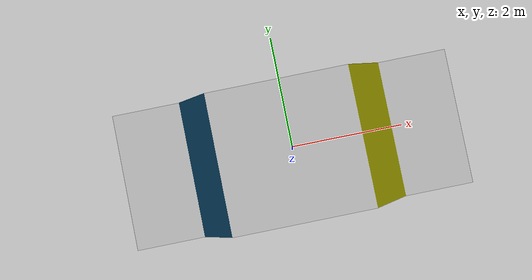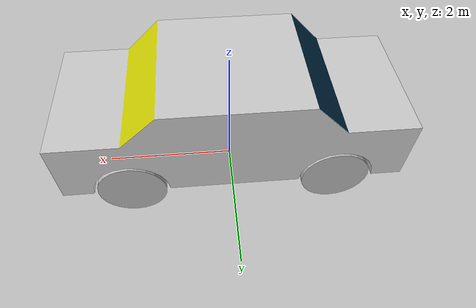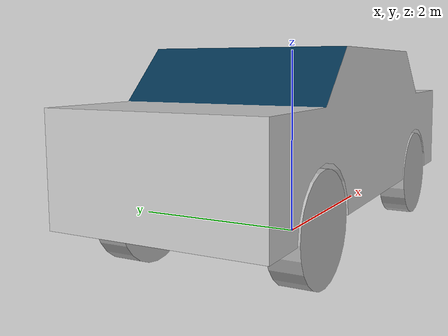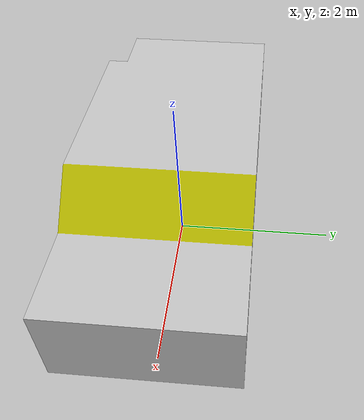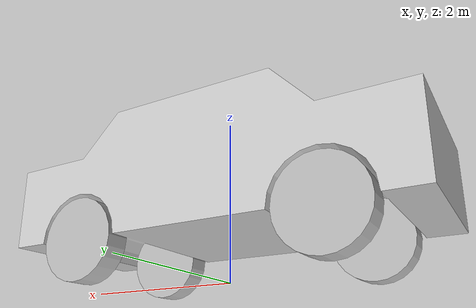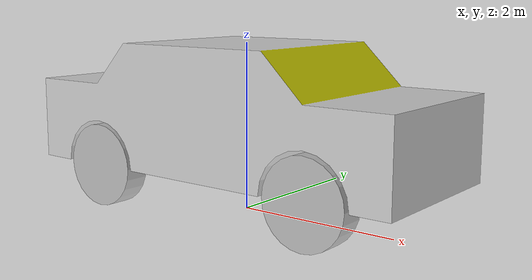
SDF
<?xml version="1.0" ?>
<sdf version="1.4">

<model name="car">
    <link name="body">
        <self_collide>true</self_collide>
        <pose> 0 0 0.5 0 0 0 </pose>
        <collision name="cbody">
            <geometry>
                <mesh>
                    <uri>model://car/meshes/carbody.dae</uri>
                    <scale> 100 100 100 </scale>
                </mesh>
            </geometry>
        </collision>
        <visual name="vbody">
            <geometry>
                <mesh>
                    <uri>model://car/meshes/carbody.dae</uri>
                    <scale> 100 100 100 </scale>
                </mesh>
            </geometry>
        </visual>
    </link>
    <link name="FLwheel">
        <pose> 1.5 -0.85 0.5 0 0 0 </pose>
        <collision name="cflwheel">
            <pose> 0 0 0 -1.5708 0 0 </pose>
            <geometry>
                <cylinder>
                    <radius>0.5</radius>
                    <length>0.3</length>
                </cylinder>
            </geometry>
        </collision>
        <visual name="vflwheel">
            <pose> 0 0 0 -1.5708 0 0 </pose>
            <geometry>
                <cylinder>
                    <radius>0.5</radius>
                    <length>0.3</length>
                </cylinder>
            </geometry>
        </visual>
    </link>
    <link name="FRwheel">
        <pose> 1.5 0.85 0.5 0 0 0 </pose>
        <collision name="cfrwheel">
            <pose> 0 0 0 -1.5708 0 0 </pose>
            <geometry>
                <cylinder>
                    <radius>0.5</radius>
                    <length>0.3</length>
                </cylinder>
            </geometry>
        </collision>
        <visual name="vfrwheel">
            <pose> 0 0 0 -1.5708 0 0 </pose>
            <geometry>
                <cylinder>
                    <radius>0.5</radius>
                    <length>0.3</length>
                </cylinder>
            </geometry>
        </visual>
    </link>
    <link name="TRwheel">
        <pose> -1.5 0.85 0.5 0 0 0 </pose>
        <collision name="ctrwheel">
            <pose> 0 0 0 -1.5708 0 0 </pose>
            <geometry>
                <cylinder>
                    <radius>0.5</radius>
                    <length>0.3</length>
                </cylinder>
            </geometry>
        </collision>
        <visual name="vtrwheel">
            <pose> 0 0 0 -1.5708 0 0 </pose>
            <geometry>
                <cylinder>
                    <radius>0.5</radius>
                    <length>0.3</length>
                </cylinder>
            </geometry>
        </visual>
    </link>
    <link name="TLwheel">
        <pose> -1.5 -0.85 0.5 0 0 0 </pose>
        <collision name="ctlwheel">
            <pose> 0 0 0 -1.5708 0 0 </pose>
            <geometry>
                <cylinder>
                    <radius>0.5</radius>
                    <length>0.3</length>
                </cylinder>
            </geometry>
        </collision>
        <visual name="vtlwheel">
            <pose> 0 0 0 -1.5708 0 0 </pose>
            <geometry>
                <cylinder>
                    <radius>0.5</radius>
                    <length>0.3</length>
                </cylinder>
            </geometry>
        </visual>
    </link>
    <link name="FRwheel_steer">
        <pose>1.5 0.85 0.5 0 0 0</pose>
    </link>
    <link name="FLwheel_steer">
        <pose>1.5 -0.85 0.5 0 0 0</pose>
    </link>

    <joint name="jFRsteer" type="revolute">
        <parent>body</parent>
        <child>FRwheel_steer</child>
        <axis>
            <xyz>0 0 1</xyz>
            <limit>
                <upper>0.8</upper>
                <lower>-0.8</lower>
            </limit>
            <dynamics>
                <friction>2.0</friction>
            </dynamics>
        </axis>
    </joint>
    <joint name="jFLsteer" type="revolute">
        <parent>body</parent>
        <child>FLwheel_steer</child>
        <axis>
            <xyz>0 0 1</xyz>
            <limit>
                <upper>0.8</upper>
                <lower>-0.8</lower>
            </limit>
            <dynamics>
                <friction>2.0</friction>
            </dynamics>
        </axis>
    </joint>
    <joint name="jFR" type="revolute">
        <parent>FRwheel_steer</parent>
        <child>FRwheel</child>
        <axis>
            <xyz>0 1 0</xyz>
        </axis>
    </joint>
    <joint name="jFL" type="revolute">
        <parent>FLwheel_steer</parent>
        <child>FLwheel</child>
        <axis>
            <xyz>0 1 0</xyz>
        </axis>
    </joint>
    <joint name="jTR" type="revolute">
        <parent>body</parent>
        <child>TRwheel</child>
        <axis>
            <xyz>0 1 0</xyz>
        </axis>
    </joint>
    <joint name="jTL" type="revolute">
        <parent>body</parent>
        <child>TLwheel</child>
        <axis>
            <xyz>0 1 0</xyz>
        </axis>
    </joint>
    <plugin name="car_plugin" filename="libcar_model.dylib" />
</model>
</sdf>
